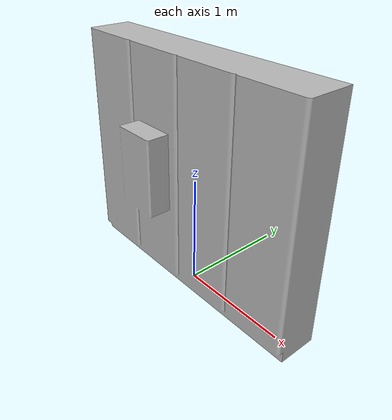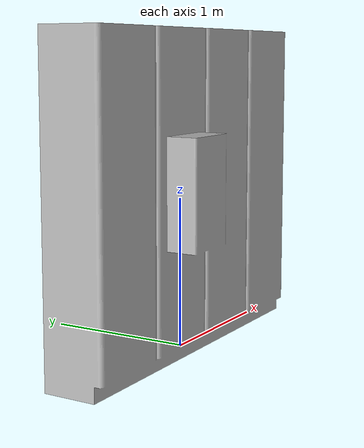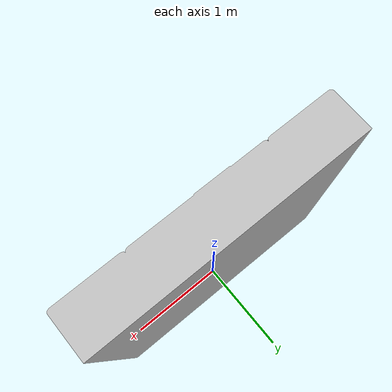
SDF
<sdf version="1.7">
  <model name="electrical_box" canonical_link="electrical_box_link">
    <link name="electrical_box_link">
      <visual name="visual">
        <pose>0 0 0 1.5708 0 0</pose>
        <geometry>
          <mesh>
            <uri>model://electrical_box/meshes/electrical_box.obj</uri>
            <scale>1 1 1</scale>
          </mesh>
        </geometry>
      </visual>

      <collision name="collision">
        <pose>0 0 0 1.5708 0 0</pose>
        <geometry>
          <mesh>
            <uri>model://electrical_box/meshes/electrical_box.obj</uri>
            <scale>1 1 1</scale>
          </mesh>
        </geometry>
      </collision>
    </link>
  </model>
</sdf>
